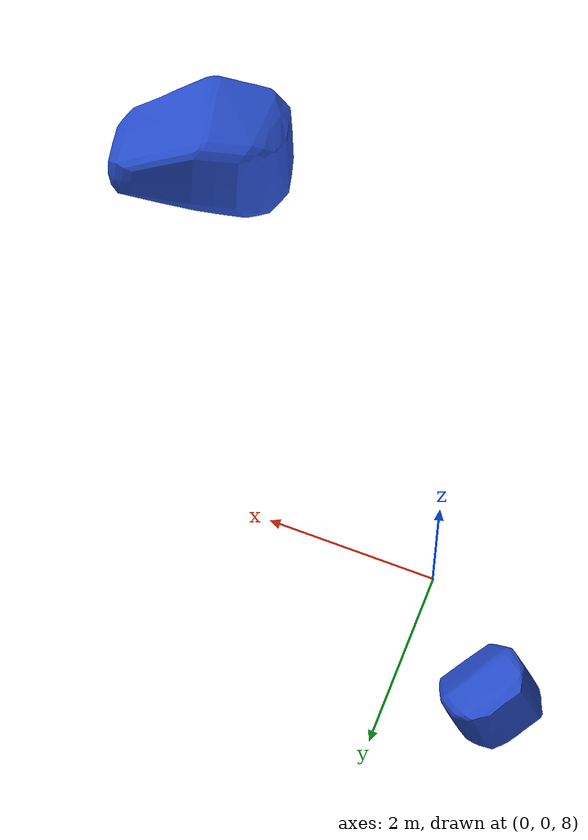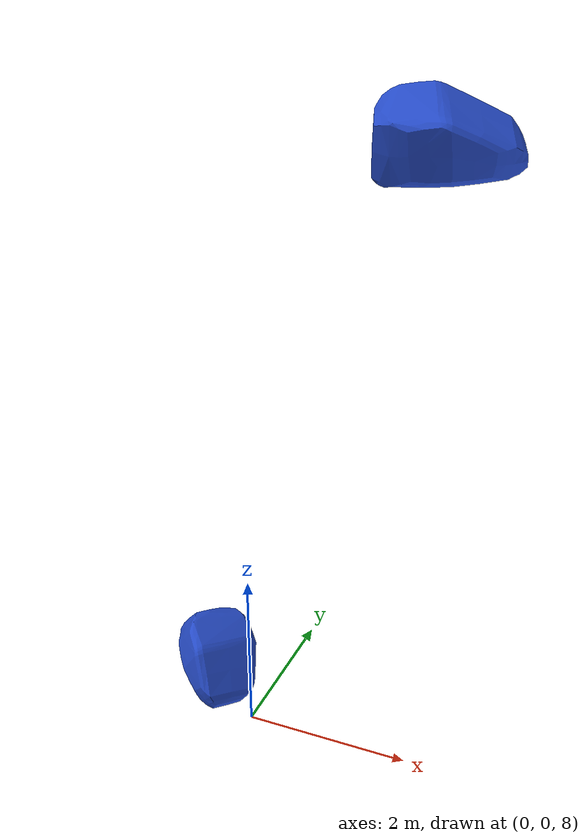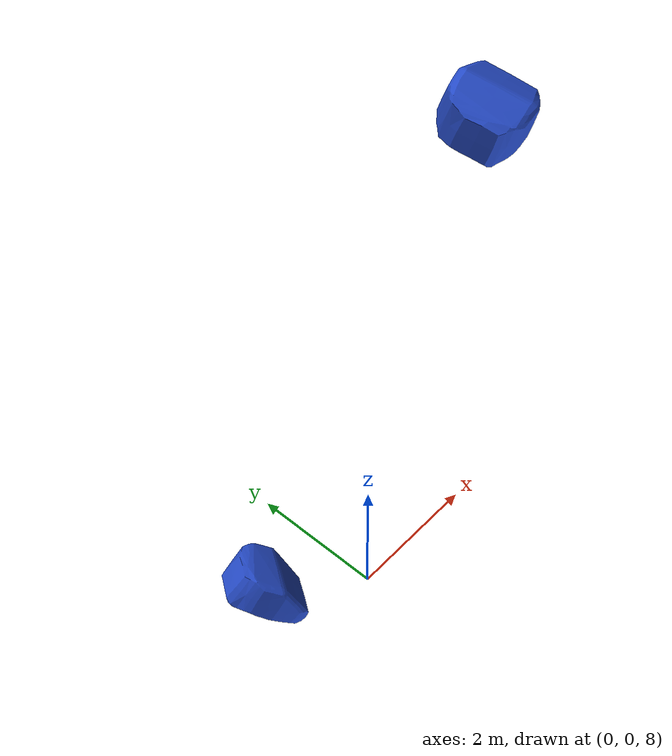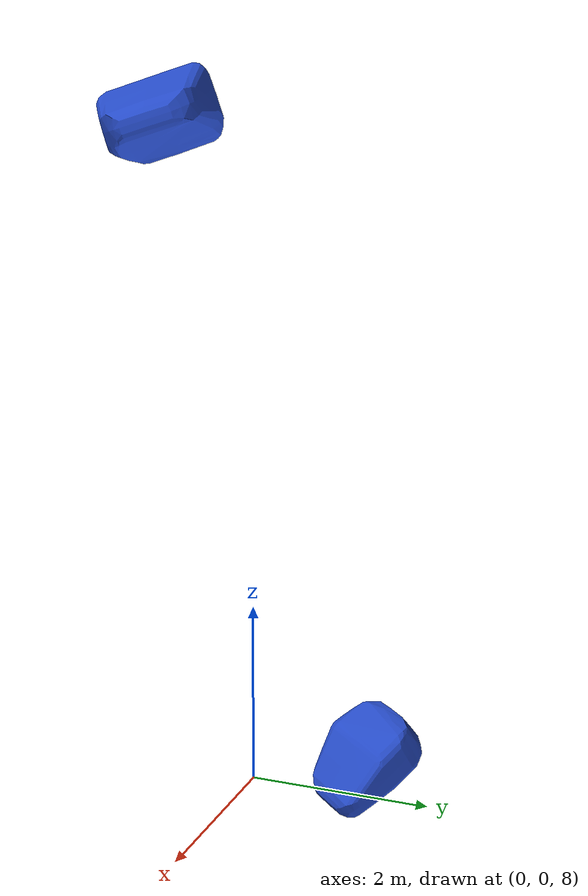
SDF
<?xml version="1.0" ?>
<sdf version="1.4">
  <world name="enceladus">

    <!-- Physics, to determine the simulation speed (step size and update rate) -->
    <physics type="ode">
      <max_step_size>0.004</max_step_size>
      <real_time_factor>1</real_time_factor>
      <real_time_update_rate>300</real_time_update_rate>
    </physics>

    <gui>
      <camera name="user camera">
	<pose>0 -5 9.5 0 1.1 1.56</pose>
      </camera>
    </gui>

    <!-- Ground Plane -->
    <include>
      <uri>model://ground_plane_trajectory</uri>
	<pose>0 0 10 0 0 0</pose>
    </include>
    <include>
      <uri>model://sun</uri>
    </include>

    <!-- Obstacles -->
    <include>
	    <name>obst1</name>
	    <uri>model://obstacle1</uri>
	    <pose>2 0 15 0.3 -0.1 0.3</pose>
    </include>

    <include>
	    <name>obst2</name>
	    <uri>model://obstacle1</uri>
	    <pose>-1 1 8 -0.2 0.6 -0.7</pose>
    </include>

    <!-- APUs  -->

    <!-- Light -->
    <light name="light" type="point">
      <cast_shadows>false</cast_shadows>
      <pose>-12 3 1 0 0 0</pose>
      <diffuse>127 127 127 255</diffuse>
      <specular>25 25 25 255</specular>
      <attenuation>
	<range>20.0</range>
	<linear>0.01</linear>
	<constant>0.7</constant>
	<quadratic>0.00</quadratic>
      </attenuation>
    </light>

<!-- Plugins for the world -->
    <plugin name="factory" filename="libfactory.so" />
    <!--plugin name="Renaming" filename="libRenaming.sh" /-->
    <plugin name ="AcousticPlugin" filename="libAcousticPlugin.so"/>
    <!-- Plugins for the world -->

>>>>>>> dhabering/Position
  </world>
</sdf>

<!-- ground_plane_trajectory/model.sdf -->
<sdf version="1.4">
  <model name="ground_plane_trajectory">
    <static>true</static>
    <link name="link">
      <visual name="visual">
        <cast_shadows>false</cast_shadows>
        <plugin name="Trajectory" filename="libTrajectory.so"/>
        <geometry>
          <plane>
            <normal>0 0 1</normal>
            <size>1 1</size>
          </plane>
        </geometry>
  	<transparency>1</transparency>
      </visual>
      <visual name="ground">
	<geometry>
	  <plane>
		<normal>0 0 1</normal>
		<size>20 20</size>
	  </plane>
	</geometry>
        <material>
          <script>
            <uri>file://media/materials/scripts/gazebo.material</uri>
            <name>Gazebo/Grey</name>
          </script>
        </material>
	<transparency>1</transparency>
      </visual>
    </link>
  </model>
</sdf>

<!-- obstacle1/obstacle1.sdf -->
<sdf version='1.5'>
  <model name='obstacle1'>
    <link name='link_1'>
      <gravity>0</gravity>
      <inertial>

        <mass>1</mass>
        <pose frame=''>0 0 0 0 0 0</pose>
        <inertia>
          <ixx>0</ixx>
          <ixy>0</ixy>
          <ixz>0</ixz>
          <iyy>0</iyy>
          <iyz>0</iyz>
          <izz>0</izz>
        </inertia>
      </inertial>
      <visual name='visual'>
        <geometry>
          <mesh>
            <uri>model://obstacle1/meshes/stein1.stl</uri>
            <scale>1 1 1</scale>
          </mesh>
        </geometry>
        <material>
          <lighting>1</lighting>
          <script>
            <uri>file://media/materials/scripts/gazebo.material</uri>
            <name>Gazebo/Blue</name>
          </script>
        </material>
        <cast_shadows>1</cast_shadows>
        <transparency>0</transparency>
      </visual>
      <collision name='collision'>
        <geometry>
            <cylinder>
              <radius>.40</radius>
              <length>.30</length>
            </cylinder>
        </geometry>
      </collision>
    </link>
    <static>0</static>
    <allow_auto_disable>1</allow_auto_disable>
  <!--plugin name="PositionPlugin" filename="libPositionPlugin.so"/-->
  </model>
</sdf>
